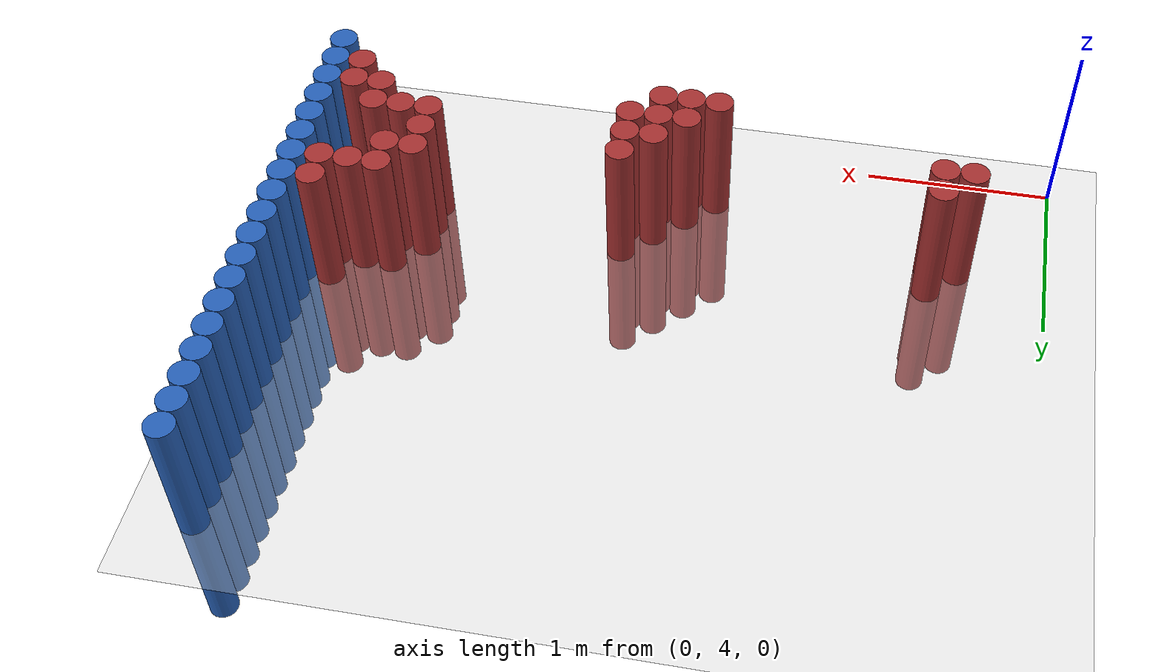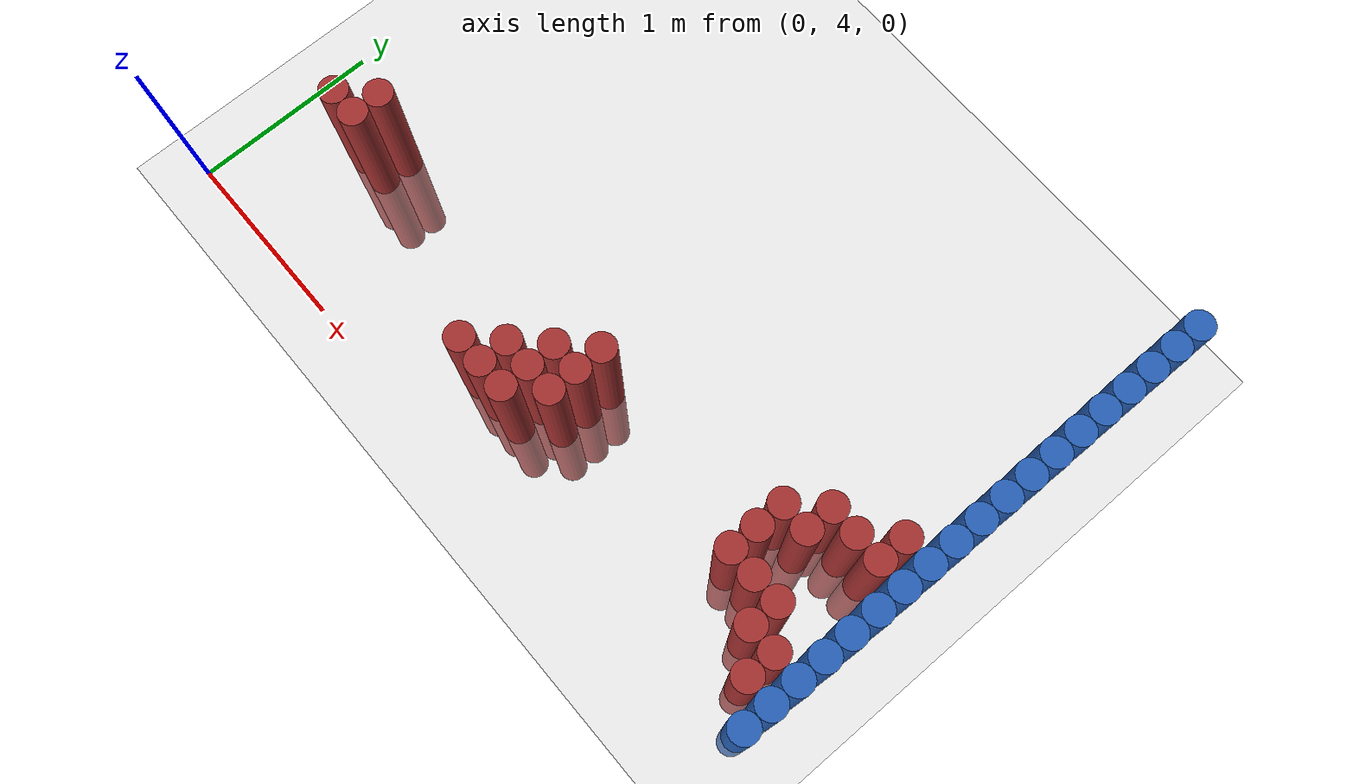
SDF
<sdf version="1.6">
 <world name="default">
  <model name="ground_plane">
   <static>1</static>
   <link name="link">
    <collision name="collision">
     <geometry><plane><normal>0 0 1</normal><size>100 100</size></plane></geometry>
     <surface><friction><ode><mu>100</mu><mu2>50</mu2></ode></friction></surface>
    </collision>
    <visual name="visual">
     <cast_shadows>0</cast_shadows>
     <geometry><plane><normal>0 0 1</normal><size>100 100</size></plane></geometry>
     <material>
      <script><uri>file://media/materials/scripts/gazebo.material</uri><name>Gazebo/Grey</name></script>
     </material>
    </visual>
   </link>
  </model>
  <model name="unit_cylinder_172">
   <static>1</static>
   <pose>3.925000 4.375000 0.000000 0.000000 0.000000 0.000000</pose>
   <link name="link">
    <inertial>
     <mass>1</mass>
     <inertia><ixx>0.145833</ixx><ixy>0</ixy><ixz>0</ixz><iyy>0.145833</iyy><iyz>0</iyz><izz>0.125</izz></inertia>
    </inertial>
    <collision name="collision">
     <geometry><cylinder><radius>0.075000</radius><length>1.5</length></cylinder></geometry>
    </collision>
    <visual name="visual">
     <geometry><cylinder><radius>0.075000</radius><length>1.5</length></cylinder></geometry>
     <material>
      <ambient>0.152000 0.379000 0.720000 1</ambient>
      <diffuse>0.152000 0.379000 0.720000 1</diffuse>
     </material>
     <material>
      <script><name>Gazebo/Grey</name><uri>file://media/materials/scripts/gazebo.material</uri></script>
     </material>
    </visual>
   </link>
  </model>
  <model name="unit_cylinder_174">
   <static>1</static>
   <pose>3.925000 4.525000 0.000000 0.000000 0.000000 0.000000</pose>
   <link name="link">
    <inertial>
     <mass>1</mass>
     <inertia><ixx>0.145833</ixx><ixy>0</ixy><ixz>0</ixz><iyy>0.145833</iyy><iyz>0</iyz><izz>0.125</izz></inertia>
    </inertial>
    <collision name="collision">
     <geometry><cylinder><radius>0.075000</radius><length>1.5</length></cylinder></geometry>
    </collision>
    <visual name="visual">
     <geometry><cylinder><radius>0.075000</radius><length>1.5</length></cylinder></geometry>
     <material>
      <ambient>0.152000 0.379000 0.720000 1</ambient>
      <diffuse>0.152000 0.379000 0.720000 1</diffuse>
     </material>
     <material>
      <script><name>Gazebo/Grey</name><uri>file://media/materials/scripts/gazebo.material</uri></script>
     </material>
    </visual>
   </link>
  </model>
  <model name="unit_cylinder_176">
   <static>1</static>
   <pose>3.925000 4.675000 0.000000 0.000000 0.000000 0.000000</pose>
   <link name="link">
    <inertial>
     <mass>1</mass>
     <inertia><ixx>0.145833</ixx><ixy>0</ixy><ixz>0</ixz><iyy>0.145833</iyy><iyz>0</iyz><izz>0.125</izz></inertia>
    </inertial>
    <collision name="collision">
     <geometry><cylinder><radius>0.075000</radius><length>1.5</length></cylinder></geometry>
    </collision>
    <visual name="visual">
     <geometry><cylinder><radius>0.075000</radius><length>1.5</length></cylinder></geometry>
     <material>
      <ambient>0.152000 0.379000 0.720000 1</ambient>
      <diffuse>0.152000 0.379000 0.720000 1</diffuse>
     </material>
     <material>
      <script><name>Gazebo/Grey</name><uri>file://media/materials/scripts/gazebo.material</uri></script>
     </material>
    </visual>
   </link>
  </model>
  <model name="unit_cylinder_178">
   <static>1</static>
   <pose>3.925000 4.825000 0.000000 0.000000 0.000000 0.000000</pose>
   <link name="link">
    <inertial>
     <mass>1</mass>
     <inertia><ixx>0.145833</ixx><ixy>0</ixy><ixz>0</ixz><iyy>0.145833</iyy><iyz>0</iyz><izz>0.125</izz></inertia>
    </inertial>
    <collision name="collision">
     <geometry><cylinder><radius>0.075000</radius><length>1.5</length></cylinder></geometry>
    </collision>
    <visual name="visual">
     <geometry><cylinder><radius>0.075000</radius><length>1.5</length></cylinder></geometry>
     <material>
      <ambient>0.152000 0.379000 0.720000 1</ambient>
      <diffuse>0.152000 0.379000 0.720000 1</diffuse>
     </material>
     <material>
      <script><name>Gazebo/Grey</name><uri>file://media/materials/scripts/gazebo.material</uri></script>
     </material>
    </visual>
   </link>
  </model>
  <model name="unit_cylinder_180">
   <static>1</static>
   <pose>3.925000 4.975000 0.000000 0.000000 0.000000 0.000000</pose>
   <link name="link">
    <inertial>
     <mass>1</mass>
     <inertia><ixx>0.145833</ixx><ixy>0</ixy><ixz>0</ixz><iyy>0.145833</iyy><iyz>0</iyz><izz>0.125</izz></inertia>
    </inertial>
    <collision name="collision">
     <geometry><cylinder><radius>0.075000</radius><length>1.5</length></cylinder></geometry>
    </collision>
    <visual name="visual">
     <geometry><cylinder><radius>0.075000</radius><length>1.5</length></cylinder></geometry>
     <material>
      <ambient>0.152000 0.379000 0.720000 1</ambient>
      <diffuse>0.152000 0.379000 0.720000 1</diffuse>
     </material>
     <material>
      <script><name>Gazebo/Grey</name><uri>file://media/materials/scripts/gazebo.material</uri></script>
     </material>
    </visual>
   </link>
  </model>
  <model name="unit_cylinder_182">
   <static>1</static>
   <pose>3.925000 5.125000 0.000000 0.000000 0.000000 0.000000</pose>
   <link name="link">
    <inertial>
     <mass>1</mass>
     <inertia><ixx>0.145833</ixx><ixy>0</ixy><ixz>0</ixz><iyy>0.145833</iyy><iyz>0</iyz><izz>0.125</izz></inertia>
    </inertial>
    <collision name="collision">
     <geometry><cylinder><radius>0.075000</radius><length>1.5</length></cylinder></geometry>
    </collision>
    <visual name="visual">
     <geometry><cylinder><radius>0.075000</radius><length>1.5</length></cylinder></geometry>
     <material>
      <ambient>0.152000 0.379000 0.720000 1</ambient>
      <diffuse>0.152000 0.379000 0.720000 1</diffuse>
     </material>
     <material>
      <script><name>Gazebo/Grey</name><uri>file://media/materials/scripts/gazebo.material</uri></script>
     </material>
    </visual>
   </link>
  </model>
  <model name="unit_cylinder_184">
   <static>1</static>
   <pose>3.925000 5.275000 0.000000 0.000000 0.000000 0.000000</pose>
   <link name="link">
    <inertial>
     <mass>1</mass>
     <inertia><ixx>0.145833</ixx><ixy>0</ixy><ixz>0</ixz><iyy>0.145833</iyy><iyz>0</iyz><izz>0.125</izz></inertia>
    </inertial>
    <collision name="collision">
     <geometry><cylinder><radius>0.075000</radius><length>1.5</length></cylinder></geometry>
    </collision>
    <visual name="visual">
     <geometry><cylinder><radius>0.075000</radius><length>1.5</length></cylinder></geometry>
     <material>
      <ambient>0.152000 0.379000 0.720000 1</ambient>
      <diffuse>0.152000 0.379000 0.720000 1</diffuse>
     </material>
     <material>
      <script><name>Gazebo/Grey</name><uri>file://media/materials/scripts/gazebo.material</uri></script>
     </material>
    </visual>
   </link>
  </model>
  <model name="unit_cylinder_186">
   <static>1</static>
   <pose>3.925000 5.425000 0.000000 0.000000 0.000000 0.000000</pose>
   <link name="link">
    <inertial>
     <mass>1</mass>
     <inertia><ixx>0.145833</ixx><ixy>0</ixy><ixz>0</ixz><iyy>0.145833</iyy><iyz>0</iyz><izz>0.125</izz></inertia>
    </inertial>
    <collision name="collision">
     <geometry><cylinder><radius>0.075000</radius><length>1.5</length></cylinder></geometry>
    </collision>
    <visual name="visual">
     <geometry><cylinder><radius>0.075000</radius><length>1.5</length></cylinder></geometry>
     <material>
      <ambient>0.152000 0.379000 0.720000 1</ambient>
      <diffuse>0.152000 0.379000 0.720000 1</diffuse>
     </material>
     <material>
      <script><name>Gazebo/Grey</name><uri>file://media/materials/scripts/gazebo.material</uri></script>
     </material>
    </visual>
   </link>
  </model>
  <model name="unit_cylinder_188">
   <static>1</static>
   <pose>3.925000 5.575000 0.000000 0.000000 0.000000 0.000000</pose>
   <link name="link">
    <inertial>
     <mass>1</mass>
     <inertia><ixx>0.145833</ixx><ixy>0</ixy><ixz>0</ixz><iyy>0.145833</iyy><iyz>0</iyz><izz>0.125</izz></inertia>
    </inertial>
    <collision name="collision">
     <geometry><cylinder><radius>0.075000</radius><length>1.5</length></cylinder></geometry>
    </collision>
    <visual name="visual">
     <geometry><cylinder><radius>0.075000</radius><length>1.5</length></cylinder></geometry>
     <material>
      <ambient>0.152000 0.379000 0.720000 1</ambient>
      <diffuse>0.152000 0.379000 0.720000 1</diffuse>
     </material>
     <material>
      <script><name>Gazebo/Grey</name><uri>file://media/materials/scripts/gazebo.material</uri></script>
     </material>
    </visual>
   </link>
  </model>
  <model name="unit_cylinder_190">
   <static>1</static>
   <pose>3.925000 5.725000 0.000000 0.000000 0.000000 0.000000</pose>
   <link name="link">
    <inertial>
     <mass>1</mass>
     <inertia><ixx>0.145833</ixx><ixy>0</ixy><ixz>0</ixz><iyy>0.145833</iyy><iyz>0</iyz><izz>0.125</izz></inertia>
    </inertial>
    <collision name="collision">
     <geometry><cylinder><radius>0.075000</radius><length>1.5</length></cylinder></geometry>
    </collision>
    <visual name="visual">
     <geometry><cylinder><radius>0.075000</radius><length>1.5</length></cylinder></geometry>
     <material>
      <ambient>0.152000 0.379000 0.720000 1</ambient>
      <diffuse>0.152000 0.379000 0.720000 1</diffuse>
     </material>
     <material>
      <script><name>Gazebo/Grey</name><uri>file://media/materials/scripts/gazebo.material</uri></script>
     </material>
    </visual>
   </link>
  </model>
  <model name="unit_cylinder_192">
   <static>1</static>
   <pose>3.925000 5.875000 0.000000 0.000000 0.000000 0.000000</pose>
   <link name="link">
    <inertial>
     <mass>1</mass>
     <inertia><ixx>0.145833</ixx><ixy>0</ixy><ixz>0</ixz><iyy>0.145833</iyy><iyz>0</iyz><izz>0.125</izz></inertia>
    </inertial>
    <collision name="collision">
     <geometry><cylinder><radius>0.075000</radius><length>1.5</length></cylinder></geometry>
    </collision>
    <visual name="visual">
     <geometry><cylinder><radius>0.075000</radius><length>1.5</length></cylinder></geometry>
     <material>
      <ambient>0.152000 0.379000 0.720000 1</ambient>
      <diffuse>0.152000 0.379000 0.720000 1</diffuse>
     </material>
     <material>
      <script><name>Gazebo/Grey</name><uri>file://media/materials/scripts/gazebo.material</uri></script>
     </material>
    </visual>
   </link>
  </model>
  <model name="unit_cylinder_194">
   <static>1</static>
   <pose>3.925000 6.025000 0.000000 0.000000 0.000000 0.000000</pose>
   <link name="link">
    <inertial>
     <mass>1</mass>
     <inertia><ixx>0.145833</ixx><ixy>0</ixy><ixz>0</ixz><iyy>0.145833</iyy><iyz>0</iyz><izz>0.125</izz></inertia>
    </inertial>
    <collision name="collision">
     <geometry><cylinder><radius>0.075000</radius><length>1.5</length></cylinder></geometry>
    </collision>
    <visual name="visual">
     <geometry><cylinder><radius>0.075000</radius><length>1.5</length></cylinder></geometry>
     <material>
      <ambient>0.152000 0.379000 0.720000 1</ambient>
      <diffuse>0.152000 0.379000 0.720000 1</diffuse>
     </material>
     <material>
      <script><name>Gazebo/Grey</name><uri>file://media/materials/scripts/gazebo.material</uri></script>
     </material>
    </visual>
   </link>
  </model>
  <model name="unit_cylinder_196">
   <static>1</static>
   <pose>3.925000 6.175000 0.000000 0.000000 0.000000 0.000000</pose>
   <link name="link">
    <inertial>
     <mass>1</mass>
     <inertia><ixx>0.145833</ixx><ixy>0</ixy><ixz>0</ixz><iyy>0.145833</iyy><iyz>0</iyz><izz>0.125</izz></inertia>
    </inertial>
    <collision name="collision">
     <geometry><cylinder><radius>0.075000</radius><length>1.5</length></cylinder></geometry>
    </collision>
    <visual name="visual">
     <geometry><cylinder><radius>0.075000</radius><length>1.5</length></cylinder></geometry>
     <material>
      <ambient>0.152000 0.379000 0.720000 1</ambient>
      <diffuse>0.152000 0.379000 0.720000 1</diffuse>
     </material>
     <material>
      <script><name>Gazebo/Grey</name><uri>file://media/materials/scripts/gazebo.material</uri></script>
     </material>
    </visual>
   </link>
  </model>
  <model name="unit_cylinder_198">
   <static>1</static>
   <pose>3.925000 6.325000 0.000000 0.000000 0.000000 0.000000</pose>
   <link name="link">
    <inertial>
     <mass>1</mass>
     <inertia><ixx>0.145833</ixx><ixy>0</ixy><ixz>0</ixz><iyy>0.145833</iyy><iyz>0</iyz><izz>0.125</izz></inertia>
    </inertial>
    <collision name="collision">
     <geometry><cylinder><radius>0.075000</radius><length>1.5</length></cylinder></geometry>
    </collision>
    <visual name="visual">
     <geometry><cylinder><radius>0.075000</radius><length>1.5</length></cylinder></geometry>
     <material>
      <ambient>0.152000 0.379000 0.720000 1</ambient>
      <diffuse>0.152000 0.379000 0.720000 1</diffuse>
     </material>
     <material>
      <script><name>Gazebo/Grey</name><uri>file://media/materials/scripts/gazebo.material</uri></script>
     </material>
    </visual>
   </link>
  </model>
  <model name="unit_cylinder_200">
   <static>1</static>
   <pose>3.925000 6.475000 0.000000 0.000000 0.000000 0.000000</pose>
   <link name="link">
    <inertial>
     <mass>1</mass>
     <inertia><ixx>0.145833</ixx><ixy>0</ixy><ixz>0</ixz><iyy>0.145833</iyy><iyz>0</iyz><izz>0.125</izz></inertia>
    </inertial>
    <collision name="collision">
     <geometry><cylinder><radius>0.075000</radius><length>1.5</length></cylinder></geometry>
    </collision>
    <visual name="visual">
     <geometry><cylinder><radius>0.075000</radius><length>1.5</length></cylinder></geometry>
     <material>
      <ambient>0.152000 0.379000 0.720000 1</ambient>
      <diffuse>0.152000 0.379000 0.720000 1</diffuse>
     </material>
     <material>
      <script><name>Gazebo/Grey</name><uri>file://media/materials/scripts/gazebo.material</uri></script>
     </material>
    </visual>
   </link>
  </model>
  <model name="unit_cylinder_202">
   <static>1</static>
   <pose>3.925000 6.625000 0.000000 0.000000 0.000000 0.000000</pose>
   <link name="link">
    <inertial>
     <mass>1</mass>
     <inertia><ixx>0.145833</ixx><ixy>0</ixy><ixz>0</ixz><iyy>0.145833</iyy><iyz>0</iyz><izz>0.125</izz></inertia>
    </inertial>
    <collision name="collision">
     <geometry><cylinder><radius>0.075000</radius><length>1.5</length></cylinder></geometry>
    </collision>
    <visual name="visual">
     <geometry><cylinder><radius>0.075000</radius><length>1.5</length></cylinder></geometry>
     <material>
      <ambient>0.152000 0.379000 0.720000 1</ambient>
      <diffuse>0.152000 0.379000 0.720000 1</diffuse>
     </material>
     <material>
      <script><name>Gazebo/Grey</name><uri>file://media/materials/scripts/gazebo.material</uri></script>
     </material>
    </visual>
   </link>
  </model>
  <model name="unit_cylinder_204">
   <static>1</static>
   <pose>3.925000 6.775000 0.000000 0.000000 0.000000 0.000000</pose>
   <link name="link">
    <inertial>
     <mass>1</mass>
     <inertia><ixx>0.145833</ixx><ixy>0</ixy><ixz>0</ixz><iyy>0.145833</iyy><iyz>0</iyz><izz>0.125</izz></inertia>
    </inertial>
    <collision name="collision">
     <geometry><cylinder><radius>0.075000</radius><length>1.5</length></cylinder></geometry>
    </collision>
    <visual name="visual">
     <geometry><cylinder><radius>0.075000</radius><length>1.5</length></cylinder></geometry>
     <material>
      <ambient>0.152000 0.379000 0.720000 1</ambient>
      <diffuse>0.152000 0.379000 0.720000 1</diffuse>
     </material>
     <material>
      <script><name>Gazebo/Grey</name><uri>file://media/materials/scripts/gazebo.material</uri></script>
     </material>
    </visual>
   </link>
  </model>
  <model name="unit_cylinder_206">
   <static>1</static>
   <pose>3.925000 6.925000 0.000000 0.000000 0.000000 0.000000</pose>
   <link name="link">
    <inertial>
     <mass>1</mass>
     <inertia><ixx>0.145833</ixx><ixy>0</ixy><ixz>0</ixz><iyy>0.145833</iyy><iyz>0</iyz><izz>0.125</izz></inertia>
    </inertial>
    <collision name="collision">
     <geometry><cylinder><radius>0.075000</radius><length>1.5</length></cylinder></geometry>
    </collision>
    <visual name="visual">
     <geometry><cylinder><radius>0.075000</radius><length>1.5</length></cylinder></geometry>
     <material>
      <ambient>0.152000 0.379000 0.720000 1</ambient>
      <diffuse>0.152000 0.379000 0.720000 1</diffuse>
     </material>
     <material>
      <script><name>Gazebo/Grey</name><uri>file://media/materials/scripts/gazebo.material</uri></script>
     </material>
    </visual>
   </link>
  </model>
  <model name="unit_cylinder_344">
   <static>1</static>
   <pose>0.475000 4.675000 0.000000 0.000000 0.000000 0.000000</pose>
   <link name="link">
    <inertial>
     <mass>1</mass>
     <inertia><ixx>0.145833</ixx><ixy>0</ixy><ixz>0</ixz><iyy>0.145833</iyy><iyz>0</iyz><izz>0.125</izz></inertia>
    </inertial>
    <collision name="collision">
     <geometry><cylinder><radius>0.075000</radius><length>1.5</length></cylinder></geometry>
    </collision>
    <visual name="visual">
     <geometry><cylinder><radius>0.075000</radius><length>1.5</length></cylinder></geometry>
     <material>
      <ambient>0.648000 0.192000 0.192000 1</ambient>
      <diffuse>0.648000 0.192000 0.192000 1</diffuse>
     </material>
     <material>
      <script><name>Gazebo/Grey</name><uri>file://media/materials/scripts/gazebo.material</uri></script>
     </material>
    </visual>
   </link>
  </model>
  <model name="unit_cylinder_350">
   <static>1</static>
   <pose>0.625000 4.675000 0.000000 0.000000 0.000000 0.000000</pose>
   <link name="link">
    <inertial>
     <mass>1</mass>
     <inertia><ixx>0.145833</ixx><ixy>0</ixy><ixz>0</ixz><iyy>0.145833</iyy><iyz>0</iyz><izz>0.125</izz></inertia>
    </inertial>
    <collision name="collision">
     <geometry><cylinder><radius>0.075000</radius><length>1.5</length></cylinder></geometry>
    </collision>
    <visual name="visual">
     <geometry><cylinder><radius>0.075000</radius><length>1.5</length></cylinder></geometry>
     <material>
      <ambient>0.648000 0.192000 0.192000 1</ambient>
      <diffuse>0.648000 0.192000 0.192000 1</diffuse>
     </material>
     <material>
      <script><name>Gazebo/Grey</name><uri>file://media/materials/scripts/gazebo.material</uri></script>
     </material>
    </visual>
   </link>
  </model>
  <model name="unit_cylinder_351">
   <static>1</static>
   <pose>0.625000 4.825000 0.000000 0.000000 0.000000 0.000000</pose>
   <link name="link">
    <inertial>
     <mass>1</mass>
     <inertia><ixx>0.145833</ixx><ixy>0</ixy><ixz>0</ixz><iyy>0.145833</iyy><iyz>0</iyz><izz>0.125</izz></inertia>
    </inertial>
    <collision name="collision">
     <geometry><cylinder><radius>0.075000</radius><length>1.5</length></cylinder></geometry>
    </collision>
    <visual name="visual">
     <geometry><cylinder><radius>0.075000</radius><length>1.5</length></cylinder></geometry>
     <material>
      <ambient>0.648000 0.192000 0.192000 1</ambient>
      <diffuse>0.648000 0.192000 0.192000 1</diffuse>
     </material>
     <material>
      <script><name>Gazebo/Grey</name><uri>file://media/materials/scripts/gazebo.material</uri></script>
     </material>
    </visual>
   </link>
  </model>
  <model name="unit_cylinder_387">
   <static>1</static>
   <pose>1.825000 4.375000 0.000000 0.000000 0.000000 0.000000</pose>
   <link name="link">
    <inertial>
     <mass>1</mass>
     <inertia><ixx>0.145833</ixx><ixy>0</ixy><ixz>0</ixz><iyy>0.145833</iyy><iyz>0</iyz><izz>0.125</izz></inertia>
    </inertial>
    <collision name="collision">
     <geometry><cylinder><radius>0.075000</radius><length>1.5</length></cylinder></geometry>
    </collision>
    <visual name="visual">
     <geometry><cylinder><radius>0.075000</radius><length>1.5</length></cylinder></geometry>
     <material>
      <ambient>0.648000 0.192000 0.192000 1</ambient>
      <diffuse>0.648000 0.192000 0.192000 1</diffuse>
     </material>
     <material>
      <script><name>Gazebo/Grey</name><uri>file://media/materials/scripts/gazebo.material</uri></script>
     </material>
    </visual>
   </link>
  </model>
  <model name="unit_cylinder_392">
   <static>1</static>
   <pose>1.975000 4.375000 0.000000 0.000000 0.000000 0.000000</pose>
   <link name="link">
    <inertial>
     <mass>1</mass>
     <inertia><ixx>0.145833</ixx><ixy>0</ixy><ixz>0</ixz><iyy>0.145833</iyy><iyz>0</iyz><izz>0.125</izz></inertia>
    </inertial>
    <collision name="collision">
     <geometry><cylinder><radius>0.075000</radius><length>1.5</length></cylinder></geometry>
    </collision>
    <visual name="visual">
     <geometry><cylinder><radius>0.075000</radius><length>1.5</length></cylinder></geometry>
     <material>
      <ambient>0.648000 0.192000 0.192000 1</ambient>
      <diffuse>0.648000 0.192000 0.192000 1</diffuse>
     </material>
     <material>
      <script><name>Gazebo/Grey</name><uri>file://media/materials/scripts/gazebo.material</uri></script>
     </material>
    </visual>
   </link>
  </model>
  <model name="unit_cylinder_393">
   <static>1</static>
   <pose>1.975000 4.525000 0.000000 0.000000 0.000000 0.000000</pose>
   <link name="link">
    <inertial>
     <mass>1</mass>
     <inertia><ixx>0.145833</ixx><ixy>0</ixy><ixz>0</ixz><iyy>0.145833</iyy><iyz>0</iyz><izz>0.125</izz></inertia>
    </inertial>
    <collision name="collision">
     <geometry><cylinder><radius>0.075000</radius><length>1.5</length></cylinder></geometry>
    </collision>
    <visual name="visual">
     <geometry><cylinder><radius>0.075000</radius><length>1.5</length></cylinder></geometry>
     <material>
      <ambient>0.648000 0.192000 0.192000 1</ambient>
      <diffuse>0.648000 0.192000 0.192000 1</diffuse>
     </material>
     <material>
      <script><name>Gazebo/Grey</name><uri>file://media/materials/scripts/gazebo.material</uri></script>
     </material>
    </visual>
   </link>
  </model>
  <model name="unit_cylinder_396">
   <static>1</static>
   <pose>2.125000 4.375000 0.000000 0.000000 0.000000 0.000000</pose>
   <link name="link">
    <inertial>
     <mass>1</mass>
     <inertia><ixx>0.145833</ixx><ixy>0</ixy><ixz>0</ixz><iyy>0.145833</iyy><iyz>0</iyz><izz>0.125</izz></inertia>
    </inertial>
    <collision name="collision">
     <geometry><cylinder><radius>0.075000</radius><length>1.5</length></cylinder></geometry>
    </collision>
    <visual name="visual">
     <geometry><cylinder><radius>0.075000</radius><length>1.5</length></cylinder></geometry>
     <material>
      <ambient>0.648000 0.192000 0.192000 1</ambient>
      <diffuse>0.648000 0.192000 0.192000 1</diffuse>
     </material>
     <material>
      <script><name>Gazebo/Grey</name><uri>file://media/materials/scripts/gazebo.material</uri></script>
     </material>
    </visual>
   </link>
  </model>
  <model name="unit_cylinder_397">
   <static>1</static>
   <pose>2.125000 4.525000 0.000000 0.000000 0.000000 0.000000</pose>
   <link name="link">
    <inertial>
     <mass>1</mass>
     <inertia><ixx>0.145833</ixx><ixy>0</ixy><ixz>0</ixz><iyy>0.145833</iyy><iyz>0</iyz><izz>0.125</izz></inertia>
    </inertial>
    <collision name="collision">
     <geometry><cylinder><radius>0.075000</radius><length>1.5</length></cylinder></geometry>
    </collision>
    <visual name="visual">
     <geometry><cylinder><radius>0.075000</radius><length>1.5</length></cylinder></geometry>
     <material>
      <ambient>0.648000 0.192000 0.192000 1</ambient>
      <diffuse>0.648000 0.192000 0.192000 1</diffuse>
     </material>
     <material>
      <script><name>Gazebo/Grey</name><uri>file://media/materials/scripts/gazebo.material</uri></script>
     </material>
    </visual>
   </link>
  </model>
  <model name="unit_cylinder_398">
   <static>1</static>
   <pose>2.125000 4.675000 0.000000 0.000000 0.000000 0.000000</pose>
   <link name="link">
    <inertial>
     <mass>1</mass>
     <inertia><ixx>0.145833</ixx><ixy>0</ixy><ixz>0</ixz><iyy>0.145833</iyy><iyz>0</iyz><izz>0.125</izz></inertia>
    </inertial>
    <collision name="collision">
     <geometry><cylinder><radius>0.075000</radius><length>1.5</length></cylinder></geometry>
    </collision>
    <visual name="visual">
     <geometry><cylinder><radius>0.075000</radius><length>1.5</length></cylinder></geometry>
     <material>
      <ambient>0.648000 0.192000 0.192000 1</ambient>
      <diffuse>0.648000 0.192000 0.192000 1</diffuse>
     </material>
     <material>
      <script><name>Gazebo/Grey</name><uri>file://media/materials/scripts/gazebo.material</uri></script>
     </material>
    </visual>
   </link>
  </model>
  <model name="unit_cylinder_399">
   <static>1</static>
   <pose>2.275000 4.525000 0.000000 0.000000 0.000000 0.000000</pose>
   <link name="link">
    <inertial>
     <mass>1</mass>
     <inertia><ixx>0.145833</ixx><ixy>0</ixy><ixz>0</ixz><iyy>0.145833</iyy><iyz>0</iyz><izz>0.125</izz></inertia>
    </inertial>
    <collision name="collision">
     <geometry><cylinder><radius>0.075000</radius><length>1.5</length></cylinder></geometry>
    </collision>
    <visual name="visual">
     <geometry><cylinder><radius>0.075000</radius><length>1.5</length></cylinder></geometry>
     <material>
      <ambient>0.648000 0.192000 0.192000 1</ambient>
      <diffuse>0.648000 0.192000 0.192000 1</diffuse>
     </material>
     <material>
      <script><name>Gazebo/Grey</name><uri>file://media/materials/scripts/gazebo.material</uri></script>
     </material>
    </visual>
   </link>
  </model>
  <model name="unit_cylinder_400">
   <static>1</static>
   <pose>2.275000 4.675000 0.000000 0.000000 0.000000 0.000000</pose>
   <link name="link">
    <inertial>
     <mass>1</mass>
     <inertia><ixx>0.145833</ixx><ixy>0</ixy><ixz>0</ixz><iyy>0.145833</iyy><iyz>0</iyz><izz>0.125</izz></inertia>
    </inertial>
    <collision name="collision">
     <geometry><cylinder><radius>0.075000</radius><length>1.5</length></cylinder></geometry>
    </collision>
    <visual name="visual">
     <geometry><cylinder><radius>0.075000</radius><length>1.5</length></cylinder></geometry>
     <material>
      <ambient>0.648000 0.192000 0.192000 1</ambient>
      <diffuse>0.648000 0.192000 0.192000 1</diffuse>
     </material>
     <material>
      <script><name>Gazebo/Grey</name><uri>file://media/materials/scripts/gazebo.material</uri></script>
     </material>
    </visual>
   </link>
  </model>
  <model name="unit_cylinder_401">
   <static>1</static>
   <pose>2.275000 4.825000 0.000000 0.000000 0.000000 0.000000</pose>
   <link name="link">
    <inertial>
     <mass>1</mass>
     <inertia><ixx>0.145833</ixx><ixy>0</ixy><ixz>0</ixz><iyy>0.145833</iyy><iyz>0</iyz><izz>0.125</izz></inertia>
    </inertial>
    <collision name="collision">
     <geometry><cylinder><radius>0.075000</radius><length>1.5</length></cylinder></geometry>
    </collision>
    <visual name="visual">
     <geometry><cylinder><radius>0.075000</radius><length>1.5</length></cylinder></geometry>
     <material>
      <ambient>0.648000 0.192000 0.192000 1</ambient>
      <diffuse>0.648000 0.192000 0.192000 1</diffuse>
     </material>
     <material>
      <script><name>Gazebo/Grey</name><uri>file://media/materials/scripts/gazebo.material</uri></script>
     </material>
    </visual>
   </link>
  </model>
  <model name="unit_cylinder_417">
   <static>1</static>
   <pose>3.325000 4.675000 0.000000 0.000000 0.000000 0.000000</pose>
   <link name="link">
    <inertial>
     <mass>1</mass>
     <inertia><ixx>0.145833</ixx><ixy>0</ixy><ixz>0</ixz><iyy>0.145833</iyy><iyz>0</iyz><izz>0.125</izz></inertia>
    </inertial>
    <collision name="collision">
     <geometry><cylinder><radius>0.075000</radius><length>1.5</length></cylinder></geometry>
    </collision>
    <visual name="visual">
     <geometry><cylinder><radius>0.075000</radius><length>1.5</length></cylinder></geometry>
     <material>
      <ambient>0.648000 0.192000 0.192000 1</ambient>
      <diffuse>0.648000 0.192000 0.192000 1</diffuse>
     </material>
     <material>
      <script><name>Gazebo/Grey</name><uri>file://media/materials/scripts/gazebo.material</uri></script>
     </material>
    </visual>
   </link>
  </model>
  <model name="unit_cylinder_418">
   <static>1</static>
   <pose>3.325000 4.825000 0.000000 0.000000 0.000000 0.000000</pose>
   <link name="link">
    <inertial>
     <mass>1</mass>
     <inertia><ixx>0.145833</ixx><ixy>0</ixy><ixz>0</ixz><iyy>0.145833</iyy><iyz>0</iyz><izz>0.125</izz></inertia>
    </inertial>
    <collision name="collision">
     <geometry><cylinder><radius>0.075000</radius><length>1.5</length></cylinder></geometry>
    </collision>
    <visual name="visual">
     <geometry><cylinder><radius>0.075000</radius><length>1.5</length></cylinder></geometry>
     <material>
      <ambient>0.648000 0.192000 0.192000 1</ambient>
      <diffuse>0.648000 0.192000 0.192000 1</diffuse>
     </material>
     <material>
      <script><name>Gazebo/Grey</name><uri>file://media/materials/scripts/gazebo.material</uri></script>
     </material>
    </visual>
   </link>
  </model>
  <model name="unit_cylinder_419">
   <static>1</static>
   <pose>3.325000 4.975000 0.000000 0.000000 0.000000 0.000000</pose>
   <link name="link">
    <inertial>
     <mass>1</mass>
     <inertia><ixx>0.145833</ixx><ixy>0</ixy><ixz>0</ixz><iyy>0.145833</iyy><iyz>0</iyz><izz>0.125</izz></inertia>
    </inertial>
    <collision name="collision">
     <geometry><cylinder><radius>0.075000</radius><length>1.5</length></cylinder></geometry>
    </collision>
    <visual name="visual">
     <geometry><cylinder><radius>0.075000</radius><length>1.5</length></cylinder></geometry>
     <material>
      <ambient>0.648000 0.192000 0.192000 1</ambient>
      <diffuse>0.648000 0.192000 0.192000 1</diffuse>
     </material>
     <material>
      <script><name>Gazebo/Grey</name><uri>file://media/materials/scripts/gazebo.material</uri></script>
     </material>
    </visual>
   </link>
  </model>
  <model name="unit_cylinder_424">
   <static>1</static>
   <pose>3.475000 4.675000 0.000000 0.000000 0.000000 0.000000</pose>
   <link name="link">
    <inertial>
     <mass>1</mass>
     <inertia><ixx>0.145833</ixx><ixy>0</ixy><ixz>0</ixz><iyy>0.145833</iyy><iyz>0</iyz><izz>0.125</izz></inertia>
    </inertial>
    <collision name="collision">
     <geometry><cylinder><radius>0.075000</radius><length>1.5</length></cylinder></geometry>
    </collision>
    <visual name="visual">
     <geometry><cylinder><radius>0.075000</radius><length>1.5</length></cylinder></geometry>
     <material>
      <ambient>0.648000 0.192000 0.192000 1</ambient>
      <diffuse>0.648000 0.192000 0.192000 1</diffuse>
     </material>
     <material>
      <script><name>Gazebo/Grey</name><uri>file://media/materials/scripts/gazebo.material</uri></script>
     </material>
    </visual>
   </link>
  </model>
  <model name="unit_cylinder_425">
   <static>1</static>
   <pose>3.475000 4.975000 0.000000 0.000000 0.000000 0.000000</pose>
   <link name="link">
    <inertial>
     <mass>1</mass>
     <inertia><ixx>0.145833</ixx><ixy>0</ixy><ixz>0</ixz><iyy>0.145833</iyy><iyz>0</iyz><izz>0.125</izz></inertia>
    </inertial>
    <collision name="collision">
     <geometry><cylinder><radius>0.075000</radius><length>1.5</length></cylinder></geometry>
    </collision>
    <visual name="visual">
     <geometry><cylinder><radius>0.075000</radius><length>1.5</length></cylinder></geometry>
     <material>
      <ambient>0.648000 0.192000 0.192000 1</ambient>
      <diffuse>0.648000 0.192000 0.192000 1</diffuse>
     </material>
     <material>
      <script><name>Gazebo/Grey</name><uri>file://media/materials/scripts/gazebo.material</uri></script>
     </material>
    </visual>
   </link>
  </model>
  <model name="unit_cylinder_426">
   <static>1</static>
   <pose>3.475000 5.125000 0.000000 0.000000 0.000000 0.000000</pose>
   <link name="link">
    <inertial>
     <mass>1</mass>
     <inertia><ixx>0.145833</ixx><ixy>0</ixy><ixz>0</ixz><iyy>0.145833</iyy><iyz>0</iyz><izz>0.125</izz></inertia>
    </inertial>
    <collision name="collision">
     <geometry><cylinder><radius>0.075000</radius><length>1.5</length></cylinder></geometry>
    </collision>
    <visual name="visual">
     <geometry><cylinder><radius>0.075000</radius><length>1.5</length></cylinder></geometry>
     <material>
      <ambient>0.648000 0.192000 0.192000 1</ambient>
      <diffuse>0.648000 0.192000 0.192000 1</diffuse>
     </material>
     <material>
      <script><name>Gazebo/Grey</name><uri>file://media/materials/scripts/gazebo.material</uri></script>
     </material>
    </visual>
   </link>
  </model>
  <model name="unit_cylinder_439">
   <static>1</static>
   <pose>3.625000 4.525000 0.000000 0.000000 0.000000 0.000000</pose>
   <link name="link">
    <inertial>
     <mass>1</mass>
     <inertia><ixx>0.145833</ixx><ixy>0</ixy><ixz>0</ixz><iyy>0.145833</iyy><iyz>0</iyz><izz>0.125</izz></inertia>
    </inertial>
    <collision name="collision">
     <geometry><cylinder><radius>0.075000</radius><length>1.5</length></cylinder></geometry>
    </collision>
    <visual name="visual">
     <geometry><cylinder><radius>0.075000</radius><length>1.5</length></cylinder></geometry>
     <material>
      <ambient>0.648000 0.192000 0.192000 1</ambient>
      <diffuse>0.648000 0.192000 0.192000 1</diffuse>
     </material>
     <material>
      <script><name>Gazebo/Grey</name><uri>file://media/materials/scripts/gazebo.material</uri></script>
     </material>
    </visual>
   </link>
  </model>
  <model name="unit_cylinder_440">
   <static>1</static>
   <pose>3.625000 4.675000 0.000000 0.000000 0.000000 0.000000</pose>
   <link name="link">
    <inertial>
     <mass>1</mass>
     <inertia><ixx>0.145833</ixx><ixy>0</ixy><ixz>0</ixz><iyy>0.145833</iyy><iyz>0</iyz><izz>0.125</izz></inertia>
    </inertial>
    <collision name="collision">
     <geometry><cylinder><radius>0.075000</radius><length>1.5</length></cylinder></geometry>
    </collision>
    <visual name="visual">
     <geometry><cylinder><radius>0.075000</radius><length>1.5</length></cylinder></geometry>
     <material>
      <ambient>0.648000 0.192000 0.192000 1</ambient>
      <diffuse>0.648000 0.192000 0.192000 1</diffuse>
     </material>
     <material>
      <script><name>Gazebo/Grey</name><uri>file://media/materials/scripts/gazebo.material</uri></script>
     </material>
    </visual>
   </link>
  </model>
  <model name="unit_cylinder_441">
   <static>1</static>
   <pose>3.625000 5.125000 0.000000 0.000000 0.000000 0.000000</pose>
   <link name="link">
    <inertial>
     <mass>1</mass>
     <inertia><ixx>0.145833</ixx><ixy>0</ixy><ixz>0</ixz><iyy>0.145833</iyy><iyz>0</iyz><izz>0.125</izz></inertia>
    </inertial>
    <collision name="collision">
     <geometry><cylinder><radius>0.075000</radius><length>1.5</length></cylinder></geometry>
    </collision>
    <visual name="visual">
     <geometry><cylinder><radius>0.075000</radius><length>1.5</length></cylinder></geometry>
     <material>
      <ambient>0.648000 0.192000 0.192000 1</ambient>
      <diffuse>0.648000 0.192000 0.192000 1</diffuse>
     </material>
     <material>
      <script><name>Gazebo/Grey</name><uri>file://media/materials/scripts/gazebo.material</uri></script>
     </material>
    </visual>
   </link>
  </model>
  <model name="unit_cylinder_466">
   <static>1</static>
   <pose>3.775000 4.375000 0.000000 0.000000 0.000000 0.000000</pose>
   <link name="link">
    <inertial>
     <mass>1</mass>
     <inertia><ixx>0.145833</ixx><ixy>0</ixy><ixz>0</ixz><iyy>0.145833</iyy><iyz>0</iyz><izz>0.125</izz></inertia>
    </inertial>
    <collision name="collision">
     <geometry><cylinder><radius>0.075000</radius><length>1.5</length></cylinder></geometry>
    </collision>
    <visual name="visual">
     <geometry><cylinder><radius>0.075000</radius><length>1.5</length></cylinder></geometry>
     <material>
      <ambient>0.648000 0.192000 0.192000 1</ambient>
      <diffuse>0.648000 0.192000 0.192000 1</diffuse>
     </material>
     <material>
      <script><name>Gazebo/Grey</name><uri>file://media/materials/scripts/gazebo.material</uri></script>
     </material>
    </visual>
   </link>
  </model>
  <model name="unit_cylinder_467">
   <static>1</static>
   <pose>3.775000 4.525000 0.000000 0.000000 0.000000 0.000000</pose>
   <link name="link">
    <inertial>
     <mass>1</mass>
     <inertia><ixx>0.145833</ixx><ixy>0</ixy><ixz>0</ixz><iyy>0.145833</iyy><iyz>0</iyz><izz>0.125</izz></inertia>
    </inertial>
    <collision name="collision">
     <geometry><cylinder><radius>0.075000</radius><length>1.5</length></cylinder></geometry>
    </collision>
    <visual name="visual">
     <geometry><cylinder><radius>0.075000</radius><length>1.5</length></cylinder></geometry>
     <material>
      <ambient>0.648000 0.192000 0.192000 1</ambient>
      <diffuse>0.648000 0.192000 0.192000 1</diffuse>
     </material>
     <material>
      <script><name>Gazebo/Grey</name><uri>file://media/materials/scripts/gazebo.material</uri></script>
     </material>
    </visual>
   </link>
  </model>
  <model name="unit_cylinder_468">
   <static>1</static>
   <pose>3.775000 5.125000 0.000000 0.000000 0.000000 0.000000</pose>
   <link name="link">
    <inertial>
     <mass>1</mass>
     <inertia><ixx>0.145833</ixx><ixy>0</ixy><ixz>0</ixz><iyy>0.145833</iyy><iyz>0</iyz><izz>0.125</izz></inertia>
    </inertial>
    <collision name="collision">
     <geometry><cylinder><radius>0.075000</radius><length>1.5</length></cylinder></geometry>
    </collision>
    <visual name="visual">
     <geometry><cylinder><radius>0.075000</radius><length>1.5</length></cylinder></geometry>
     <material>
      <ambient>0.648000 0.192000 0.192000 1</ambient>
      <diffuse>0.648000 0.192000 0.192000 1</diffuse>
     </material>
     <material>
      <script><name>Gazebo/Grey</name><uri>file://media/materials/scripts/gazebo.material</uri></script>
     </material>
    </visual>
   </link>
  </model>
  <model name="unit_cylinder_469">
   <static>1</static>
   <pose>3.775000 5.275000 0.000000 0.000000 0.000000 0.000000</pose>
   <link name="link">
    <inertial>
     <mass>1</mass>
     <inertia><ixx>0.145833</ixx><ixy>0</ixy><ixz>0</ixz><iyy>0.145833</iyy><iyz>0</iyz><izz>0.125</izz></inertia>
    </inertial>
    <collision name="collision">
     <geometry><cylinder><radius>0.075000</radius><length>1.5</length></cylinder></geometry>
    </collision>
    <visual name="visual">
     <geometry><cylinder><radius>0.075000</radius><length>1.5</length></cylinder></geometry>
     <material>
      <ambient>0.648000 0.192000 0.192000 1</ambient>
      <diffuse>0.648000 0.192000 0.192000 1</diffuse>
     </material>
     <material>
      <script><name>Gazebo/Grey</name><uri>file://media/materials/scripts/gazebo.material</uri></script>
     </material>
    </visual>
   </link>
  </model>
  <model name="unit_cylinder_511">
   <static>1</static>
   <pose>3.925000 4.225000 0.000000 0.000000 0.000000 0.000000</pose>
   <link name="link">
    <inertial>
     <mass>1</mass>
     <inertia><ixx>0.145833</ixx><ixy>0</ixy><ixz>0</ixz><iyy>0.145833</iyy><iyz>0</iyz><izz>0.125</izz></inertia>
    </inertial>
    <collision name="collision">
     <geometry><cylinder><radius>0.075000</radius><length>1.5</length></cylinder></geometry>
    </collision>
    <visual name="visual">
     <geometry><cylinder><radius>0.075000</radius><length>1.5</length></cylinder></geometry>
     <material>
      <ambient>0.152000 0.379000 0.720000 1</ambient>
      <diffuse>0.152000 0.379000 0.720000 1</diffuse>
     </material>
     <material>
      <script><name>Gazebo/Grey</name><uri>file://media/materials/scripts/gazebo.material</uri></script>
     </material>
    </visual>
   </link>
  </model>
  <model name="unit_cylinder_512">
   <static>1</static>
   <pose>3.925000 4.375000 0.000000 0.000000 0.000000 0.000000</pose>
   <link name="link">
    <inertial>
     <mass>1</mass>
     <inertia><ixx>0.145833</ixx><ixy>0</ixy><ixz>0</ixz><iyy>0.145833</iyy><iyz>0</iyz><izz>0.125</izz></inertia>
    </inertial>
    <collision name="collision">
     <geometry><cylinder><radius>0.075000</radius><length>1.5</length></cylinder></geometry>
    </collision>
    <visual name="visual">
     <geometry><cylinder><radius>0.075000</radius><length>1.5</length></cylinder></geometry>
     <material>
      <ambient>0.152000 0.379000 0.720000 1</ambient>
      <diffuse>0.152000 0.379000 0.720000 1</diffuse>
     </material>
     <material>
      <script><name>Gazebo/Grey</name><uri>file://media/materials/scripts/gazebo.material</uri></script>
     </material>
    </visual>
   </link>
  </model>
  <model name="unit_cylinder_513">
   <static>1</static>
   <pose>3.925000 4.525000 0.000000 0.000000 0.000000 0.000000</pose>
   <link name="link">
    <inertial>
     <mass>1</mass>
     <inertia><ixx>0.145833</ixx><ixy>0</ixy><ixz>0</ixz><iyy>0.145833</iyy><iyz>0</iyz><izz>0.125</izz></inertia>
    </inertial>
    <collision name="collision">
     <geometry><cylinder><radius>0.075000</radius><length>1.5</length></cylinder></geometry>
    </collision>
    <visual name="visual">
     <geometry><cylinder><radius>0.075000</radius><length>1.5</length></cylinder></geometry>
     <material>
      <ambient>0.152000 0.379000 0.720000 1</ambient>
      <diffuse>0.152000 0.379000 0.720000 1</diffuse>
     </material>
     <material>
      <script><name>Gazebo/Grey</name><uri>file://media/materials/scripts/gazebo.material</uri></script>
     </material>
    </visual>
   </link>
  </model>
  <model name="unit_cylinder_514">
   <static>1</static>
   <pose>3.925000 4.675000 0.000000 0.000000 0.000000 0.000000</pose>
   <link name="link">
    <inertial>
     <mass>1</mass>
     <inertia><ixx>0.145833</ixx><ixy>0</ixy><ixz>0</ixz><iyy>0.145833</iyy><iyz>0</iyz><izz>0.125</izz></inertia>
    </inertial>
    <collision name="collision">
     <geometry><cylinder><radius>0.075000</radius><length>1.5</length></cylinder></geometry>
    </collision>
    <visual name="visual">
     <geometry><cylinder><radius>0.075000</radius><length>1.5</length></cylinder></geometry>
     <material>
      <ambient>0.152000 0.379000 0.720000 1</ambient>
      <diffuse>0.152000 0.379000 0.720000 1</diffuse>
     </material>
     <material>
      <script><name>Gazebo/Grey</name><uri>file://media/materials/scripts/gazebo.material</uri></script>
     </material>
    </visual>
   </link>
  </model>
  <model name="unit_cylinder_515">
   <static>1</static>
   <pose>3.925000 4.825000 0.000000 0.000000 0.000000 0.000000</pose>
   <link name="link">
    <inertial>
     <mass>1</mass>
     <inertia><ixx>0.145833</ixx><ixy>0</ixy><ixz>0</ixz><iyy>0.145833</iyy><iyz>0</iyz><izz>0.125</izz></inertia>
    </inertial>
    <collision name="collision">
     <geometry><cylinder><radius>0.075000</radius><length>1.5</length></cylinder></geometry>
    </collision>
    <visual name="visual">
     <geometry><cylinder><radius>0.075000</radius><length>1.5</length></cylinder></geometry>
     <material>
      <ambient>0.152000 0.379000 0.720000 1</ambient>
      <diffuse>0.152000 0.379000 0.720000 1</diffuse>
     </material>
     <material>
      <script><name>Gazebo/Grey</name><uri>file://media/materials/scripts/gazebo.material</uri></script>
     </material>
    </visual>
   </link>
  </model>
  <model name="unit_cylinder_516">
   <static>1</static>
   <pose>3.925000 4.975000 0.000000 0.000000 0.000000 0.000000</pose>
   <link name="link">
    <inertial>
     <mass>1</mass>
     <inertia><ixx>0.145833</ixx><ixy>0</ixy><ixz>0</ixz><iyy>0.145833</iyy><iyz>0</iyz><izz>0.125</izz></inertia>
    </inertial>
    <collision name="collision">
     <geometry><cylinder><radius>0.075000</radius><length>1.5</length></cylinder></geometry>
    </collision>
    <visual name="visual">
     <geometry><cylinder><radius>0.075000</radius><length>1.5</length></cylinder></geometry>
     <material>
      <ambient>0.152000 0.379000 0.720000 1</ambient>
      <diffuse>0.152000 0.379000 0.720000 1</diffuse>
     </material>
     <material>
      <script><name>Gazebo/Grey</name><uri>file://media/materials/scripts/gazebo.material</uri></script>
     </material>
    </visual>
   </link>
  </model>
  <model name="unit_cylinder_517">
   <static>1</static>
   <pose>3.925000 5.125000 0.000000 0.000000 0.000000 0.000000</pose>
   <link name="link">
    <inertial>
     <mass>1</mass>
     <inertia><ixx>0.145833</ixx><ixy>0</ixy><ixz>0</ixz><iyy>0.145833</iyy><iyz>0</iyz><izz>0.125</izz></inertia>
    </inertial>
    <collision name="collision">
     <geometry><cylinder><radius>0.075000</radius><length>1.5</length></cylinder></geometry>
    </collision>
    <visual name="visual">
     <geometry><cylinder><radius>0.075000</radius><length>1.5</length></cylinder></geometry>
     <material>
      <ambient>0.152000 0.379000 0.720000 1</ambient>
      <diffuse>0.152000 0.379000 0.720000 1</diffuse>
     </material>
     <material>
      <script><name>Gazebo/Grey</name><uri>file://media/materials/scripts/gazebo.material</uri></script>
     </material>
    </visual>
   </link>
  </model>
  <model name="unit_cylinder_518">
   <static>1</static>
   <pose>3.925000 5.275000 0.000000 0.000000 0.000000 0.000000</pose>
   <link name="link">
    <inertial>
     <mass>1</mass>
     <inertia><ixx>0.145833</ixx><ixy>0</ixy><ixz>0</ixz><iyy>0.145833</iyy><iyz>0</iyz><izz>0.125</izz></inertia>
    </inertial>
    <collision name="collision">
     <geometry><cylinder><radius>0.075000</radius><length>1.5</length></cylinder></geometry>
    </collision>
    <visual name="visual">
     <geometry><cylinder><radius>0.075000</radius><length>1.5</length></cylinder></geometry>
     <material>
      <ambient>0.152000 0.379000 0.720000 1</ambient>
      <diffuse>0.152000 0.379000 0.720000 1</diffuse>
     </material>
     <material>
      <script><name>Gazebo/Grey</name><uri>file://media/materials/scripts/gazebo.material</uri></script>
     </material>
    </visual>
   </link>
  </model>
  <model name="unit_cylinder_519">
   <static>1</static>
   <pose>3.925000 5.425000 0.000000 0.000000 0.000000 0.000000</pose>
   <link name="link">
    <inertial>
     <mass>1</mass>
     <inertia><ixx>0.145833</ixx><ixy>0</ixy><ixz>0</ixz><iyy>0.145833</iyy><iyz>0</iyz><izz>0.125</izz></inertia>
    </inertial>
    <collision name="collision">
     <geometry><cylinder><radius>0.075000</radius><length>1.5</length></cylinder></geometry>
    </collision>
    <visual name="visual">
     <geometry><cylinder><radius>0.075000</radius><length>1.5</length></cylinder></geometry>
     <material>
      <ambient>0.152000 0.379000 0.720000 1</ambient>
      <diffuse>0.152000 0.379000 0.720000 1</diffuse>
     </material>
     <material>
      <script><name>Gazebo/Grey</name><uri>file://media/materials/scripts/gazebo.material</uri></script>
     </material>
    </visual>
   </link>
  </model>
 </world>
</sdf>
